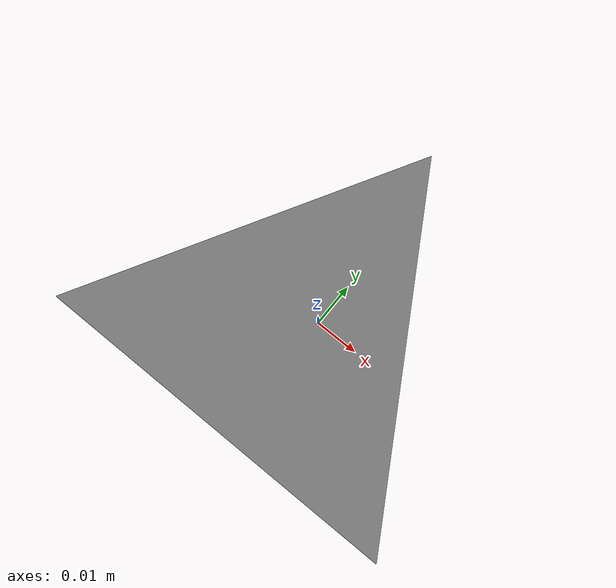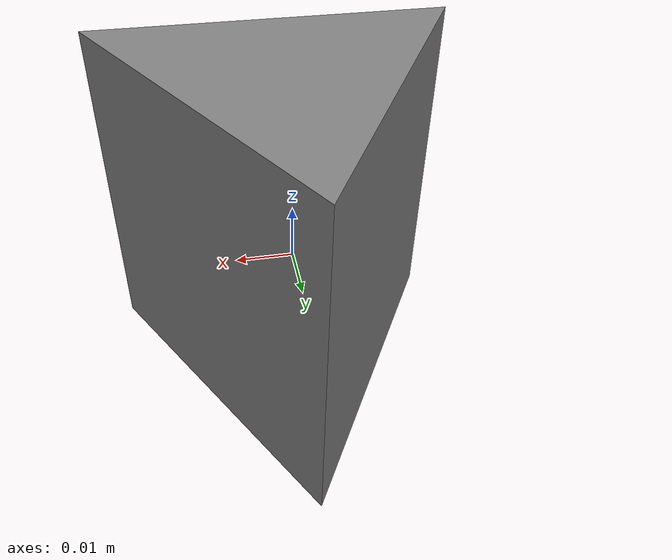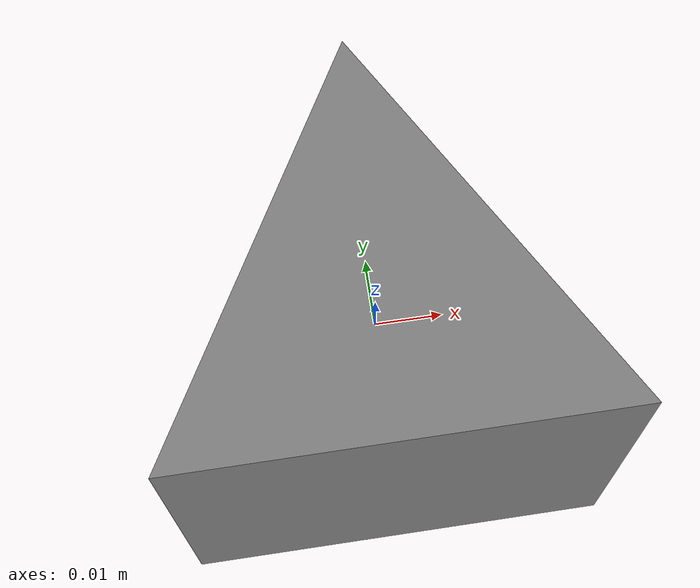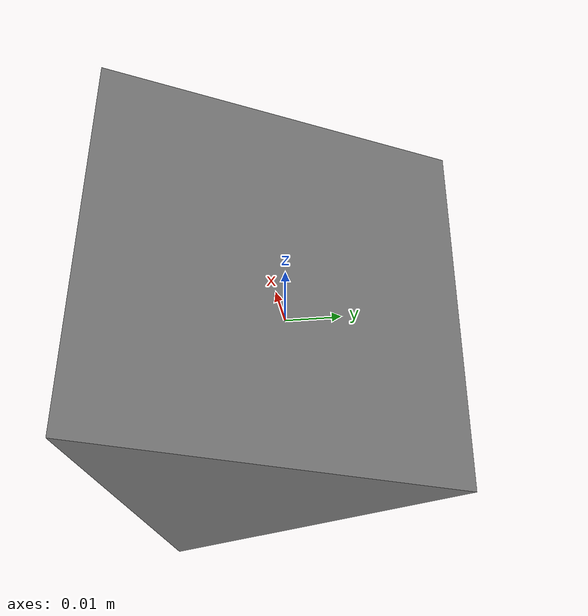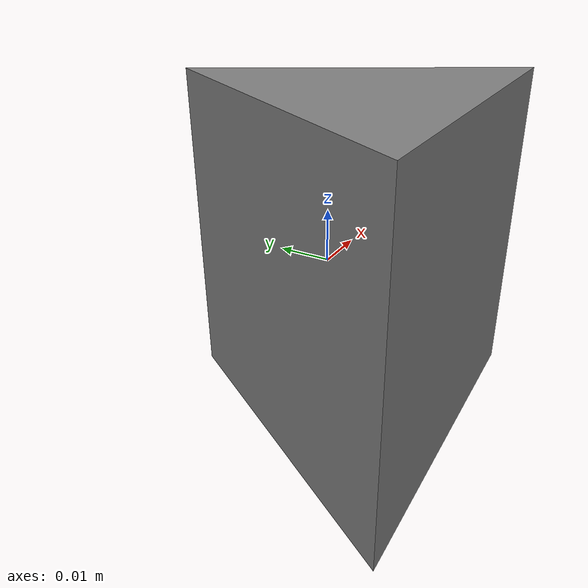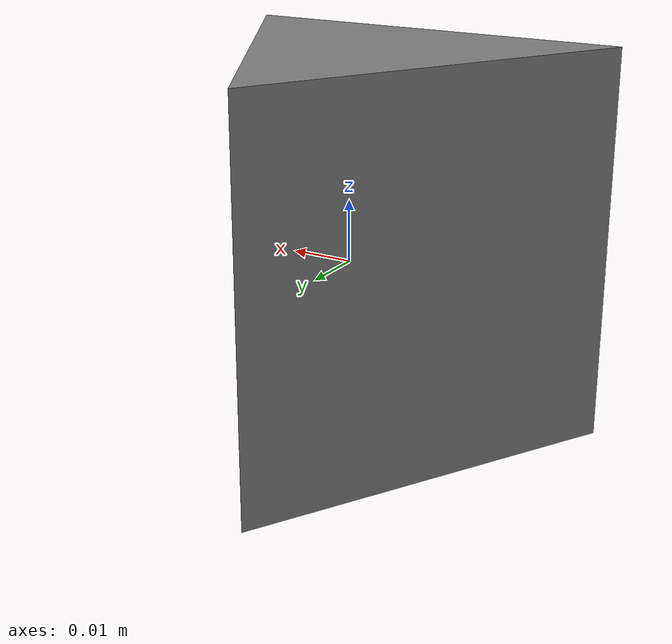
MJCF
<mujoco model="pyramid">
    <compiler angle="radian"/>
    <default>
        <geom type="mesh" condim="3" margin="0.005" contype="1" conaffinity="1"/>
    </default>
    <asset>
        <mesh name="prism" file="trig_prism.stl" scale="0.0013 0.0013 0.001"/>
    </asset>
    <worldbody>
        <body name="prism">
            <geom mesh="prism" density="400"/>
        </body>
    </worldbody>
</mujoco>
